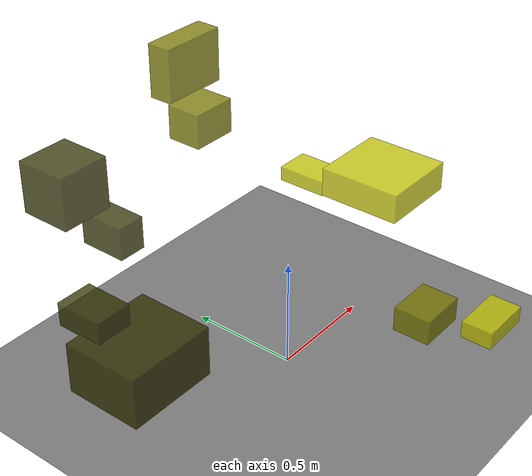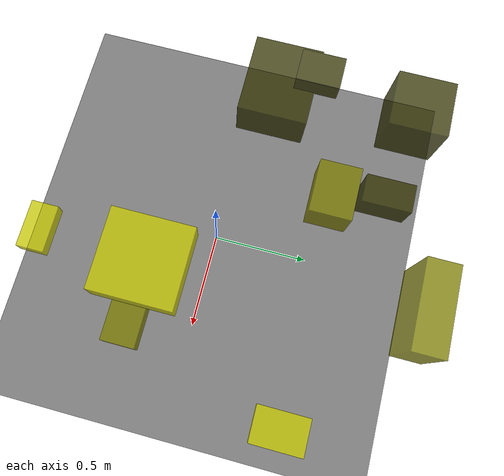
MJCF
<?xml version="1.0"?>
<mujoco model="obstacle_scene">
  <compiler angle="radian" coordinate="local"/>
  <option timestep="0.001" gravity="0 0 -9.81"/>

  <asset>
    <material name="obstacle_mat" rgba="0.8 0.8 0.0 0.8"/>
    <material name="ground_mat" rgba="0.5 0.5 0.5 1"/>
  </asset>

  <worldbody>
    <!-- Ground plane -->
    <geom name="ground" type="plane" size="3 3 0.1" material="ground_mat"/>

    <!-- Obstacles -->
    <body name="obstacle_0" pos="-0.518669 0.742135 0.855566">
      <geom name="obs_0" type="box" size="0.121509 0.120497 0.119845" rgba="0.2 0.2 0.0 0.8"/>
    </body>
    <body name="obstacle_1" pos="0.338895 0.859913 1.059353">
      <geom name="obs_1" type="box" size="0.163899 0.059646 0.130654" rgba="0.5 0.5 0.0 0.8"/>
    </body>
    <body name="obstacle_2" pos="0.277515 -0.805888 0.425560">
      <geom name="obs_2" type="box" size="0.115338 0.066904 0.037699" rgba="0.8 0.8 0.0 0.8"/>
    </body>
    <body name="obstacle_3" pos="-0.746924 0.139931 0.404407">
      <geom name="obs_3" type="box" size="0.205310 0.174605 0.114072" rgba="0.2 0.2 0.0 0.8"/>
    </body>
    <body name="obstacle_4" pos="0.584137 -0.337581 0.067600">
      <geom name="obs_4" type="box" size="0.119243 0.091836 0.061406" rgba="0.5 0.5 0.0 0.8"/>
    </body>
    <body name="obstacle_5" pos="0.886152 0.536369 0.348470">
      <geom name="obs_5" type="box" size="0.087409 0.127024 0.037579" rgba="0.8 0.8 0.0 0.8"/>
    </body>
    <body name="obstacle_6" pos="-0.265404 0.761246 0.505198">
      <geom name="obs_6" type="box" size="0.068148 0.115907 0.079202" rgba="0.2 0.2 0.0 0.8"/>
    </body>
    <body name="obstacle_7" pos="-0.008469 0.458249 1.042011">
      <geom name="obs_7" type="box" size="0.102482 0.078916 0.076160" rgba="0.5 0.5 0.0 0.8"/>
    </body>
    <body name="obstacle_8" pos="0.374592 -0.199680 0.819296">
      <geom name="obs_8" type="box" size="0.175624 0.179078 0.063637" rgba="0.8 0.8 0.0 0.8"/>
    </body>
    <body name="obstacle_9" pos="-0.796794 0.318130 0.562731">
      <geom name="obs_9" type="box" size="0.081896 0.108006 0.052248" rgba="0.2 0.2 0.0 0.8"/>
    </body>
  </worldbody>
</mujoco>
